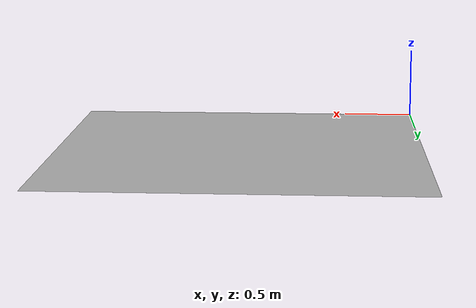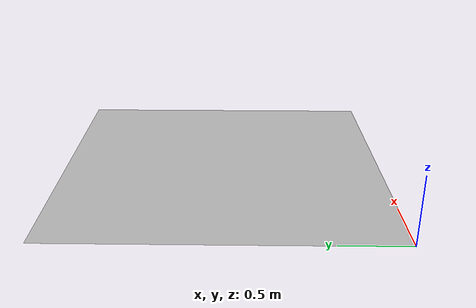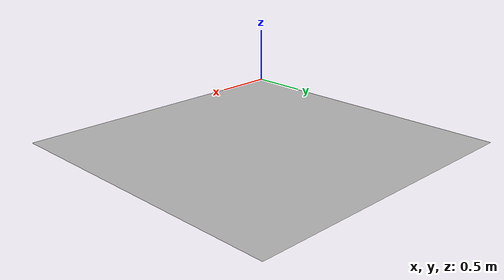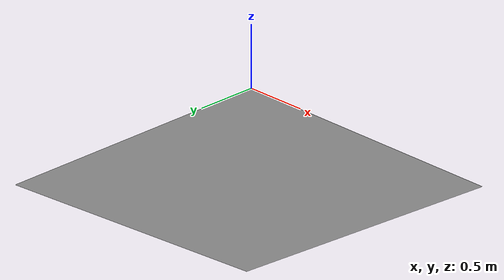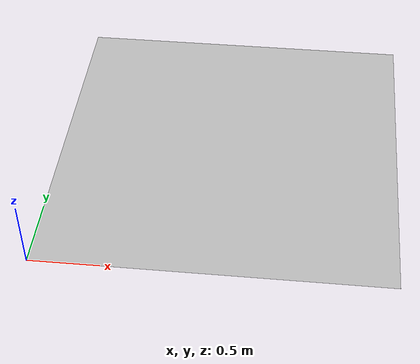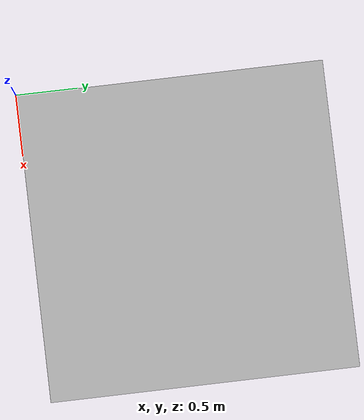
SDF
<?xml version="1.0" ?>
<sdf version="1.5">
  <model name="floor_R026_KXO">
    <static>true</static>
    <link name="floor_R026_KXO_link">
        <collision name="floor_R026_KXO_collision">
         <geometry>
            <mesh>
                <uri>model://floor_R026_KXO/meshes/model.dae</uri>
                <scale>0.5 0.5 0.5</scale>
            </mesh>
        </geometry>
      </collision>

      <visual name="floor_R026_KXO_mesh">
        <cast_shadows>false</cast_shadows>
        <geometry>
            <mesh>
                <uri>model://floor_R026_KXO/meshes/model.dae</uri>
                <scale>0.5 0.5 0.5</scale>
            </mesh>
        </geometry>
      </visual>
    </link>
  </model>
</sdf>
